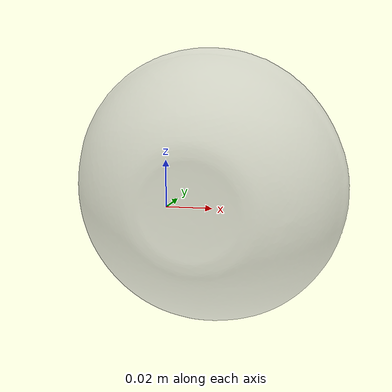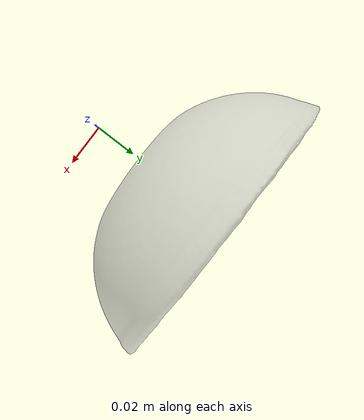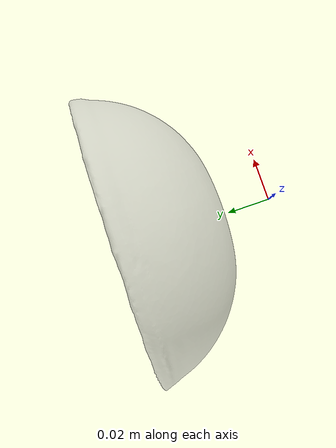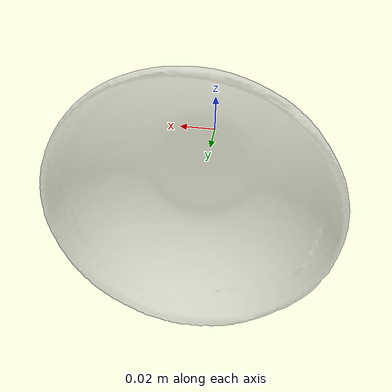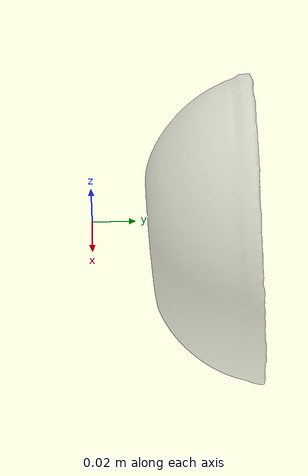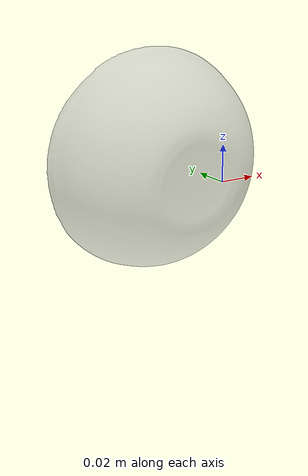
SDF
<?xml version='1.0'?>
<sdf version="1.4">
  <model name="Glassbowl">
    <static>false</static>
    <link name="link">
      <inertial>
        <pose>0.0026705575923592637 0.055577060270732816 -0.004432965573078246 0.30186319705683834 0.03453381592570333 -1.5750299908888412</pose>
        <mass>0.05462026418801259</mass>
        <inertia>
          <ixx>0.00010699065147448946</ixx>
          <ixy>9.295744596410319e-22</ixy>
          <ixz>-8.727698249628494e-21</ixz>
          <iyy>6.312873016469866e-05</iyy>
          <iyz>1.998264580203553e-22</iyz>
          <izz>6.222348628911975e-05</izz>
        </inertia>
      </inertial>
      <collision name="collision">
        <geometry>
          <mesh>
            <!-- Use a downsampled mesh for collisions -->
            <uri>model:///Glassbowl/Glassbowl_250_collision.obj</uri>
	        </mesh>
        </geometry>
        <surface>
      </surface>
      </collision>
      <visual name="visual">
        <geometry>
          <mesh>
            <uri>model:///Glassbowl/Glassbowl_25k_tex.obj</uri>
	        </mesh>
        </geometry>
        <material>
          <script>
            <uri>model:///Glassbowl/Glassbowl.material</uri>
            <name>Glassbowl</name>
          </script>
        </material>
      </visual>
    </link>
  </model>
</sdf>
